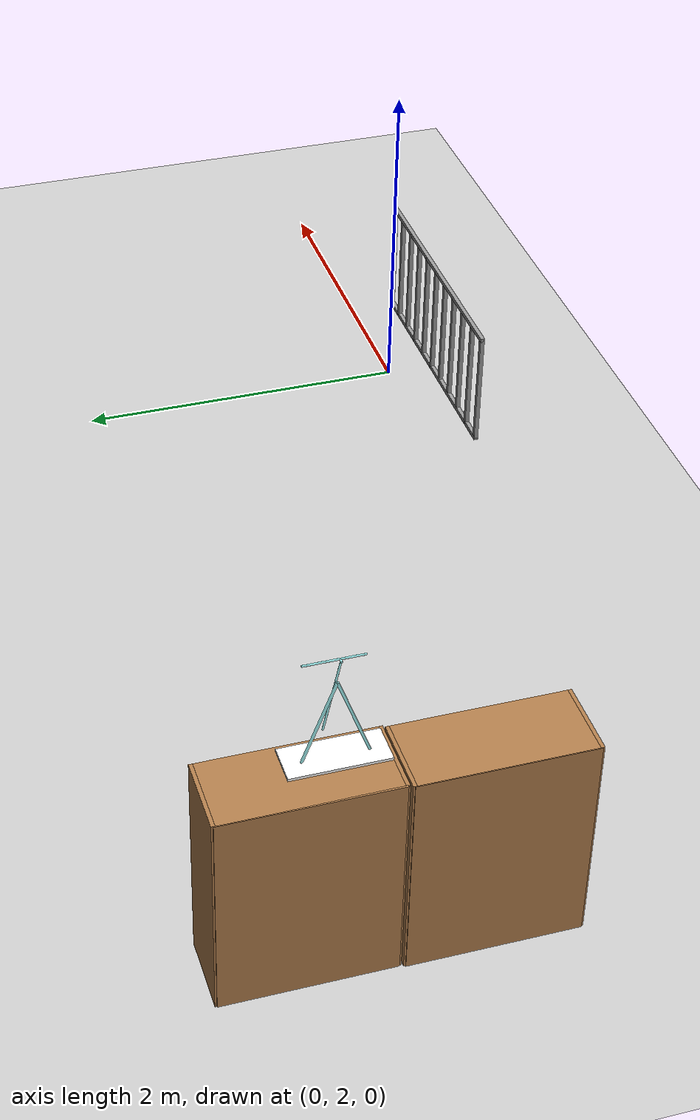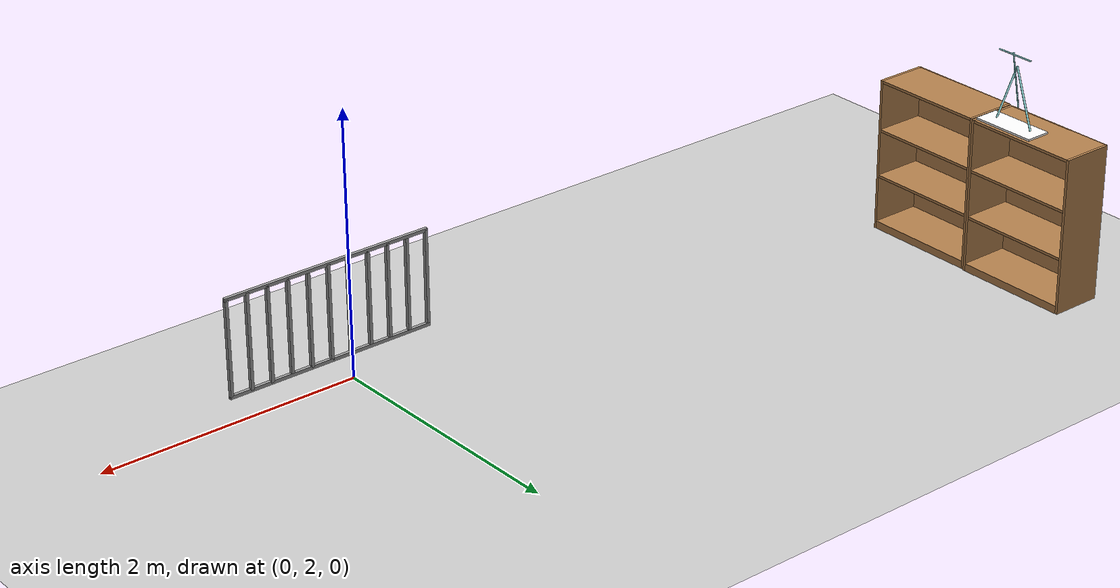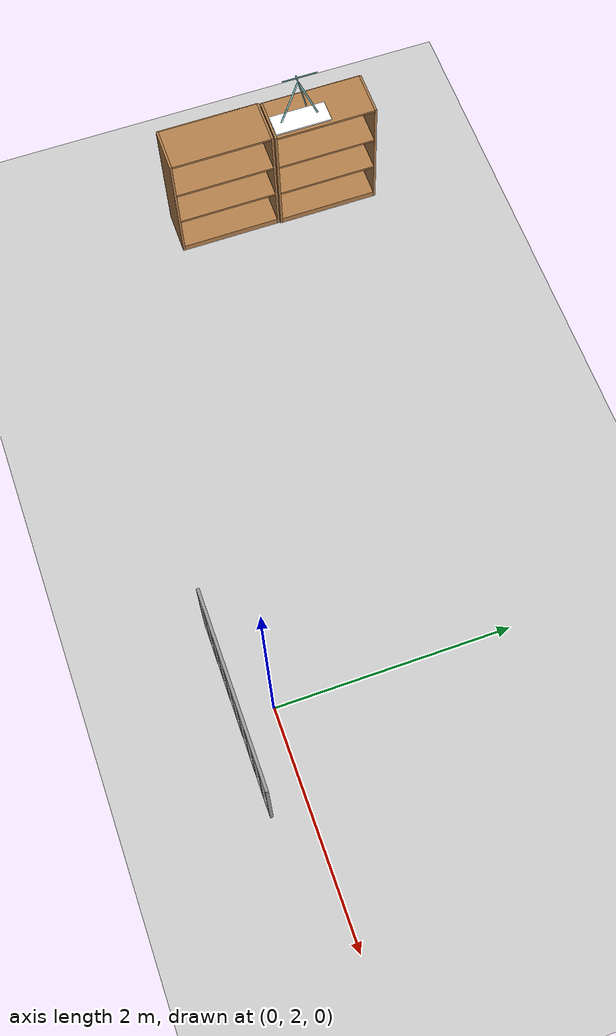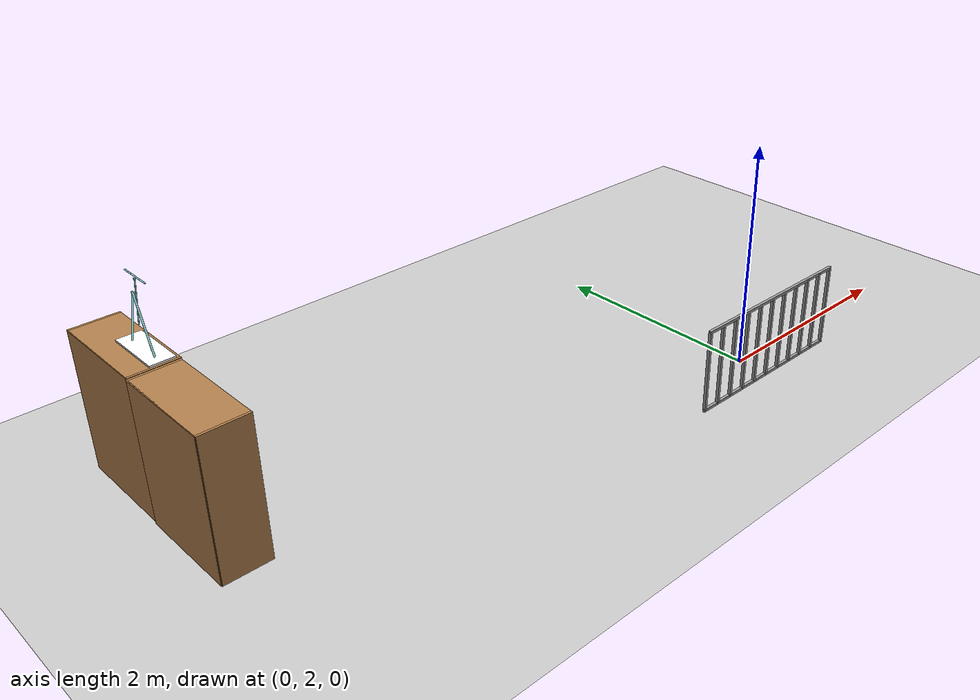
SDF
<sdf version="1.7">
 <world name="ufba_modificado">
  <model name="ground_plane">
   <static>1</static>
   <link name="link">
    <collision name="collision">
     <geometry><plane><normal>0 0 1</normal><size>100 100</size></plane></geometry>
     <surface>
      <contact><collide_bitmask>65535</collide_bitmask></contact>
      <friction><ode><mu>100</mu><mu2>50</mu2></ode></friction>
     </surface>
    </collision>
    <visual name="visual">
     <cast_shadows>0</cast_shadows>
     <geometry><plane><normal>0 0 1</normal><size>100 100</size></plane></geometry>
     <material>
      <script><uri>file://media/materials/scripts/gazebo.material</uri><name>Gazebo/Grey</name></script>
     </material>
    </visual>
   </link>
  </model>
  <model name="prateleira_1">
   <static>1</static>
   <link name="link">
    <inertial><mass>1</mass></inertial>
    <collision name="back">
     <pose>0 0.005 0.6 0 -0 0</pose>
     <geometry><box><size>0.9 0.01 1.2</size></box></geometry>
    </collision>
    <visual name="visual1">
     <pose>0 0.005 0.6 0 -0 0</pose>
     <geometry><box><size>0.9 0.01 1.2</size></box></geometry>
     <material>
      <script><uri>file://media/materials/scripts/gazebo.material</uri><name>Gazebo/Wood</name></script>
     </material>
    </visual>
    <collision name="left_side">
     <pose>0.45 -0.195 0.6 0 -0 0</pose>
     <geometry><box><size>0.02 0.4 1.2</size></box></geometry>
    </collision>
    <visual name="visual2">
     <pose>0.45 -0.195 0.6 0 -0 0</pose>
     <geometry><box><size>0.02 0.4 1.2</size></box></geometry>
     <material>
      <script><uri>file://media/materials/scripts/gazebo.material</uri><name>Gazebo/Wood</name></script>
     </material>
    </visual>
    <collision name="right_side">
     <pose>-0.45 -0.195 0.6 0 -0 0</pose>
     <geometry><box><size>0.02 0.4 1.2</size></box></geometry>
    </collision>
    <visual name="visual3">
     <pose>-0.45 -0.195 0.6 0 -0 0</pose>
     <geometry><box><size>0.02 0.4 1.2</size></box></geometry>
     <material>
      <script><uri>file://media/materials/scripts/gazebo.material</uri><name>Gazebo/Wood</name></script>
     </material>
    </visual>
    <collision name="bottom">
     <pose>0 -0.195 0.03 0 -0 0</pose>
     <geometry><box><size>0.88 0.4 0.06</size></box></geometry>
    </collision>
    <visual name="visual4">
     <pose>0 -0.195 0.03 0 -0 0</pose>
     <geometry><box><size>0.88 0.4 0.06</size></box></geometry>
     <material>
      <script><uri>file://media/materials/scripts/gazebo.material</uri><name>Gazebo/Wood</name></script>
     </material>
    </visual>
    <collision name="top">
     <pose>0 -0.195 1.19 0 -0 0</pose>
     <geometry><box><size>0.88 0.4 0.02</size></box></geometry>
    </collision>
    <visual name="visual5">
     <pose>0 -0.195 1.19 0 -0 0</pose>
     <geometry><box><size>0.88 0.4 0.02</size></box></geometry>
     <material>
      <script><uri>file://media/materials/scripts/gazebo.material</uri><name>Gazebo/Wood</name></script>
     </material>
    </visual>
    <collision name="low_shelf">
     <pose>0 -0.195 0.43 0 -0 0</pose>
     <geometry><box><size>0.88 0.4 0.02</size></box></geometry>
    </collision>
    <visual name="visual6">
     <pose>0 -0.195 0.43 0 -0 0</pose>
     <geometry><box><size>0.88 0.4 0.02</size></box></geometry>
     <material>
      <script><uri>file://media/materials/scripts/gazebo.material</uri><name>Gazebo/Wood</name></script>
     </material>
    </visual>
    <collision name="high_shelf">
     <pose>0 -0.195 0.8 0 -0 0</pose>
     <geometry><box><size>0.88 0.4 0.02</size></box></geometry>
    </collision>
    <visual name="visual7">
     <pose>0 -0.195 0.8 0 -0 0</pose>
     <geometry><box><size>0.88 0.4 0.02</size></box></geometry>
     <material>
      <script><uri>file://media/materials/scripts/gazebo.material</uri><name>Gazebo/Wood</name></script>
     </material>
    </visual>
   </link>
   <pose>-4.77065 3.0608 0 0 -0 1.5707</pose>
  </model>
  <model name="prateleira_1_clone">
   <static>1</static>
   <link name="link">
    <inertial><mass>1</mass></inertial>
    <collision name="back">
     <pose>0 0.005 0.6 0 -0 0</pose>
     <geometry><box><size>0.9 0.01 1.2</size></box></geometry>
    </collision>
    <visual name="visual1">
     <pose>0 0.005 0.6 0 -0 0</pose>
     <geometry><box><size>0.9 0.01 1.2</size></box></geometry>
     <material>
      <script><uri>file://media/materials/scripts/gazebo.material</uri><name>Gazebo/Wood</name></script>
     </material>
    </visual>
    <collision name="left_side">
     <pose>0.45 -0.195 0.6 0 -0 0</pose>
     <geometry><box><size>0.02 0.4 1.2</size></box></geometry>
    </collision>
    <visual name="visual2">
     <pose>0.45 -0.195 0.6 0 -0 0</pose>
     <geometry><box><size>0.02 0.4 1.2</size></box></geometry>
     <material>
      <script><uri>file://media/materials/scripts/gazebo.material</uri><name>Gazebo/Wood</name></script>
     </material>
    </visual>
    <collision name="right_side">
     <pose>-0.45 -0.195 0.6 0 -0 0</pose>
     <geometry><box><size>0.02 0.4 1.2</size></box></geometry>
    </collision>
    <visual name="visual3">
     <pose>-0.45 -0.195 0.6 0 -0 0</pose>
     <geometry><box><size>0.02 0.4 1.2</size></box></geometry>
     <material>
      <script><uri>file://media/materials/scripts/gazebo.material</uri><name>Gazebo/Wood</name></script>
     </material>
    </visual>
    <collision name="bottom">
     <pose>0 -0.195 0.03 0 -0 0</pose>
     <geometry><box><size>0.88 0.4 0.06</size></box></geometry>
    </collision>
    <visual name="visual4">
     <pose>0 -0.195 0.03 0 -0 0</pose>
     <geometry><box><size>0.88 0.4 0.06</size></box></geometry>
     <material>
      <script><uri>file://media/materials/scripts/gazebo.material</uri><name>Gazebo/Wood</name></script>
     </material>
    </visual>
    <collision name="top">
     <pose>0 -0.195 1.19 0 -0 0</pose>
     <geometry><box><size>0.88 0.4 0.02</size></box></geometry>
    </collision>
    <visual name="visual5">
     <pose>0 -0.195 1.19 0 -0 0</pose>
     <geometry><box><size>0.88 0.4 0.02</size></box></geometry>
     <material>
      <script><uri>file://media/materials/scripts/gazebo.material</uri><name>Gazebo/Wood</name></script>
     </material>
    </visual>
    <collision name="low_shelf">
     <pose>0 -0.195 0.43 0 -0 0</pose>
     <geometry><box><size>0.88 0.4 0.02</size></box></geometry>
    </collision>
    <visual name="visual6">
     <pose>0 -0.195 0.43 0 -0 0</pose>
     <geometry><box><size>0.88 0.4 0.02</size></box></geometry>
     <material>
      <script><uri>file://media/materials/scripts/gazebo.material</uri><name>Gazebo/Wood</name></script>
     </material>
    </visual>
    <collision name="high_shelf">
     <pose>0 -0.195 0.8 0 -0 0</pose>
     <geometry><box><size>0.88 0.4 0.02</size></box></geometry>
    </collision>
    <visual name="visual7">
     <pose>0 -0.195 0.8 0 -0 0</pose>
     <geometry><box><size>0.88 0.4 0.02</size></box></geometry>
     <material>
      <script><uri>file://media/materials/scripts/gazebo.material</uri><name>Gazebo/Wood</name></script>
     </material>
    </visual>
   </link>
   <pose>-4.76009 3.98886 0 0 -0 1.5707</pose>
  </model>
  <model name="pendulum">
   <link name="base">
    <inertial>
     <inertia><ixx>1</ixx><ixy>0</ixy><ixz>0</ixz><iyy>1</iyy><iyz>0</iyz><izz>1</izz></inertia>
     <mass>1</mass>
    </inertial>
    <visual name="vis_plate_on_ground">
     <pose>-0 0.001 0.0005 0 -0 0</pose>
     <geometry><box><size>0.2 0.5 0.015</size></box></geometry>
     <material>
      <ambient>1 1 1 1</ambient>
      <diffuse>1 1 1 1</diffuse>
      <specular>1 1 1 1</specular>
      <pbr>
       <metal>
        <albedo_map>materials/Wood/Wood_COLOR.jpg</albedo_map>
        <normal_map>materials/Wood/Wood_NORM.jpg</normal_map>
        <roughness_map>materials/Wood/Wood_ROUGH.jpg</roughness_map>
       </metal>
      </pbr>
     </material>
    </visual>
    <visual name="vis_pole">
     <pose>-0.01375 0.0819 0.225 0.349 -0 0</pose>
     <geometry><cylinder><length>0.4788</length><radius>0.007</radius></cylinder></geometry>
     <material>
      <ambient>0.66 1 1 1</ambient>
      <diffuse>0.66 1 1 1</diffuse>
      <specular>0.66 1 1 1</specular>
      <pbr><metal><metalness>0.9</metalness></metal></pbr>
     </material>
    </visual>
    <visual name="vis_pole2">
     <pose>-0.01375 -0.0819 0.225 -0.349 0 0</pose>
     <geometry><cylinder><length>0.4788</length><radius>0.007</radius></cylinder></geometry>
     <material>
      <ambient>0.66 1 1 1</ambient>
      <diffuse>0.66 1 1 1</diffuse>
      <specular>0.66 1 1 1</specular>
      <pbr><metal><metalness>0.9</metalness></metal></pbr>
     </material>
    </visual>
    <collision name="col_plate_on_ground">
     <pose>-0 0.001 0.0005 0 -0 0</pose>
     <geometry><box><size>0.2 0.5 0.015</size></box></geometry>
     <density>2710.0</density>
    </collision>
    <collision name="col_pole">
     <pose>-0.01375 0.0819 0.225 0.349 -0 0</pose>
     <geometry><cylinder><length>0.4788</length><radius>0.007</radius></cylinder></geometry>
     <density>2710</density>
    </collision>
    <collision name="col_pole2">
     <pose>-0.01375 -0.0819 0.225 -0.349 0 0</pose>
     <geometry><cylinder><length>0.4788</length><radius>0.007</radius></cylinder></geometry>
     <density>2710</density>
    </collision>
   </link>
   <link name="upper_link">
    <pose>0 0.017 0.355 0.2 -0 0</pose>
    <inertial>
     <inertia><ixx>1</ixx><ixy>0</ixy><ixz>0</ixz><iyy>1</iyy><iyz>0</iyz><izz>1</izz></inertia>
     <mass>1</mass>
    </inertial>
    <visual name="vis_upper_joint">
     <pose>-0.0025 0 0.0875 3.14159 1.57079 3.14159</pose>
     <geometry><cylinder><radius>0.005</radius><length>0.015</length></cylinder></geometry>
     <material>
      <ambient>0.66 1 1 1</ambient>
      <diffuse>0.66 1 1 1</diffuse>
      <specular>0.66 1 1 1</specular>
      <pbr><metal><metalness>0.9</metalness></metal></pbr>
     </material>
    </visual>
    <visual name="vis_bob2">
     <pose>0.01 0 0.2 3.14159 1.57079 3.14159</pose>
     <geometry><cylinder><radius>0.005</radius><length>0.02</length></cylinder></geometry>
     <material>
      <ambient>0.66 1 1 1</ambient>
      <diffuse>0.66 1 1 1</diffuse>
      <specular>0.66 1 1 1</specular>
      <pbr><metal><metalness>0.9</metalness></metal></pbr>
     </material>
    </visual>
    <visual name="vis_cylinder">
     <pose>0.01 0 0 0 -0 0</pose>
     <geometry><cylinder><radius>0.005</radius><length>0.395</length></cylinder></geometry>
     <material>
      <ambient>0.66 1 1 1</ambient>
      <diffuse>0.66 1 1 1</diffuse>
      <specular>0.66 1 1 1</specular>
      <pbr><metal><metalness>0.9</metalness></metal></pbr>
     </material>
    </visual>
    <collision name="col_upper_joint">
     <pose>-0.0025 0 0.0875 3.14159 1.57079 3.14159</pose>
     <geometry><cylinder><radius>0.01</radius><length>0.015</length></cylinder></geometry>
     <density>2710</density>
    </collision>
    <collision name="col_bob2">
     <pose>0.01 0 0.207 3.14159 1.57079 3.14159</pose>
     <geometry><cylinder><radius>0.01</radius><length>0.02</length></cylinder></geometry>
     <density>2710</density>
    </collision>
    <collision name="col_cylinder">
     <pose>0.01 0 0 0 -0 0</pose>
     <geometry><cylinder><radius>0.005</radius><length>0.395</length></cylinder></geometry>
     <density>2710</density>
    </collision>
   </link>
   <link name="lower_link">
    <pose>0.025 -0.02 0.55 -1.57 0 0</pose>
    <inertial>
     <inertia><ixx>1</ixx><ixy>0</ixy><ixz>0</ixz><iyy>1</iyy><iyz>0</iyz><izz>1</izz></inertia>
     <mass>1</mass>
    </inertial>
    <visual name="vis_cylinder">
     <pose>0 0 0.025 0 -0 0</pose>
     <geometry><cylinder><radius>0.005</radius><length>0.3</length></cylinder></geometry>
     <material>
      <ambient>0.66 1 1 1</ambient>
      <diffuse>0.66 1 1 1</diffuse>
      <specular>0.66 1 1 1</specular>
      <pbr><metal><metalness>0.9</metalness></metal></pbr>
     </material>
    </visual>
    <collision name="col_cylinder">
     <pose>0 0 0.025 0 -0 0</pose>
     <geometry><cylinder><radius>0.005</radius><length>0.3</length></cylinder></geometry>
     <density>2710</density>
    </collision>
   </link>
   <joint name="upper_joint" type="revolute">
    <pose>-0.0025 0 0.0875 0 -0 0</pose>
    <parent>base</parent>
    <child>upper_link</child>
    <axis>
     <xyz>1 0 0</xyz>
     <limit><lower>-1e+16</lower><upper>1e+16</upper></limit>
     <dynamics><spring_reference>0</spring_reference><spring_stiffness>0</spring_stiffness></dynamics>
    </axis>
   </joint>
   <joint name="lower_joint" type="revolute">
    <pose relative_to="upper_link">0.01 0 0.2 0 -0 0</pose>
    <parent>upper_link</parent>
    <child>lower_link</child>
    <axis>
     <xyz>1 0 0</xyz>
     <limit><lower>-1e+16</lower><upper>1e+16</upper></limit>
     <dynamics><spring_reference>0</spring_reference><spring_stiffness>0</spring_stiffness></dynamics>
    </axis>
   </joint>
   <pose>-4.49231 3.79783 1.207 -5e-06 1e-06 -9.7e-05</pose>
  </model>
  <model name="pet_gate_wide_clone_0">
   <static>1</static>
   <link name="link">
    <collision name="bar1_collision">
     <pose>0 0 0.381 0 -0 0</pose>
     <geometry><box><size>0.0254 0.0254 0.7366</size></box></geometry>
    </collision>
    <visual name="bar1_visual">
     <pose>0 0 0.381 0 -0 0</pose>
     <geometry><box><size>0.0254 0.0254 0.7366</size></box></geometry>
     <material>
      <script><uri>file://media/materials/scripts/gazebo.material</uri><name>Gazebo/Grey</name></script>
     </material>
    </visual>
    <collision name="bar2_collision">
     <pose>0.1651 0 0.381 0 -0 0</pose>
     <geometry><box><size>0.0254 0.0254 0.7366</size></box></geometry>
    </collision>
    <visual name="bar2_visual">
     <pose>0.1651 0 0.381 0 -0 0</pose>
     <geometry><box><size>0.0254 0.0254 0.7366</size></box></geometry>
     <material>
      <script><uri>file://media/materials/scripts/gazebo.material</uri><name>Gazebo/Grey</name></script>
     </material>
    </visual>
    <collision name="bar3_collision">
     <pose>0.3302 0 0.381 0 -0 0</pose>
     <geometry><box><size>0.0254 0.0254 0.7366</size></box></geometry>
    </collision>
    <visual name="bar3_visual">
     <pose>0.3302 0 0.381 0 -0 0</pose>
     <geometry><box><size>0.0254 0.0254 0.7366</size></box></geometry>
     <material>
      <script><uri>file://media/materials/scripts/gazebo.material</uri><name>Gazebo/Grey</name></script>
     </material>
    </visual>
    <collision name="bar4_collision">
     <pose>0.4953 0 0.381 0 -0 0</pose>
     <geometry><box><size>0.0254 0.0254 0.7366</size></box></geometry>
    </collision>
    <visual name="bar4_visual">
     <pose>0.4953 0 0.381 0 -0 0</pose>
     <geometry><box><size>0.0254 0.0254 0.7366</size></box></geometry>
     <material>
      <script><uri>file://media/materials/scripts/gazebo.material</uri><name>Gazebo/Grey</name></script>
     </material>
    </visual>
    <collision name="bar5_collision">
     <pose>0.6604 0 0.381 0 -0 0</pose>
     <geometry><box><size>0.0254 0.0254 0.7366</size></box></geometry>
    </collision>
    <visual name="bar5_visual">
     <pose>0.6604 0 0.381 0 -0 0</pose>
     <geometry><box><size>0.0254 0.0254 0.7366</size></box></geometry>
     <material>
      <script><uri>file://media/materials/scripts/gazebo.material</uri><name>Gazebo/Grey</name></script>
     </material>
    </visual>
    <collision name="bar6_collision">
     <pose>0.8255 0 0.381 0 -0 0</pose>
     <geometry><box><size>0.0254 0.0254 0.7366</size></box></geometry>
    </collision>
    <visual name="bar6_visual">
     <pose>0.8255 0 0.381 0 -0 0</pose>
     <geometry><box><size>0.0254 0.0254 0.7366</size></box></geometry>
     <material>
      <script><uri>file://media/materials/scripts/gazebo.material</uri><name>Gazebo/Grey</name></script>
     </material>
    </visual>
    <collision name="bar7_collision">
     <pose>0.9906 0 0.381 0 -0 0</pose>
     <geometry><box><size>0.0254 0.0254 0.7366</size></box></geometry>
    </collision>
    <visual name="bar7_visual">
     <pose>0.9906 0 0.381 0 -0 0</pose>
     <geometry><box><size>0.0254 0.0254 0.7366</size></box></geometry>
     <material>
      <script><uri>file://media/materials/scripts/gazebo.material</uri><name>Gazebo/Grey</name></script>
     </material>
    </visual>
    <collision name="bar8_collision">
     <pose>1.1557 0 0.381 0 -0 0</pose>
     <geometry><box><size>0.0254 0.0254 0.7366</size></box></geometry>
    </collision>
    <visual name="bar8_visual">
     <pose>1.1557 0 0.381 0 -0 0</pose>
     <geometry><box><size>0.0254 0.0254 0.7366</size></box></geometry>
     <material>
      <script><uri>file://media/materials/scripts/gazebo.material</uri><name>Gazebo/Grey</name></script>
     </material>
    </visual>
    <collision name="bar9_collision">
     <pose>1.3208 0 0.381 0 -0 0</pose>
     <geometry><box><size>0.0254 0.0254 0.7366</size></box></geometry>
    </collision>
    <visual name="bar9_visual">
     <pose>1.3208 0 0.381 0 -0 0</pose>
     <geometry><box><size>0.0254 0.0254 0.7366</size></box></geometry>
     <material>
      <script><uri>file://media/materials/scripts/gazebo.material</uri><name>Gazebo/Grey</name></script>
     </material>
    </visual>
    <collision name="bar10_collision">
     <pose>1.4859 0 0.381 0 -0 0</pose>
     <geometry><box><size>0.0254 0.0254 0.7366</size></box></geometry>
    </collision>
    <visual name="bar10_visual">
     <pose>1.4859 0 0.381 0 -0 0</pose>
     <geometry><box><size>0.0254 0.0254 0.7366</size></box></geometry>
     <material>
      <script><uri>file://media/materials/scripts/gazebo.material</uri><name>Gazebo/Grey</name></script>
     </material>
    </visual>
    <collision name="bar11_collision">
     <pose>1.651 0 0.381 0 -0 0</pose>
     <geometry><box><size>0.0254 0.0254 0.7366</size></box></geometry>
    </collision>
    <visual name="bar11_visual">
     <pose>1.651 0 0.381 0 -0 0</pose>
     <geometry><box><size>0.0254 0.0254 0.7366</size></box></geometry>
     <material>
      <script><uri>file://media/materials/scripts/gazebo.material</uri><name>Gazebo/Grey</name></script>
     </material>
    </visual>
    <collision name="top_rail_collision">
     <pose>0.8255 0 0.7493 0 -0 0</pose>
     <geometry><box><size>1.6764 0.0254 0.0254</size></box></geometry>
    </collision>
    <visual name="top_rail_visual">
     <pose>0.8255 0 0.7493 0 -0 0</pose>
     <geometry><box><size>1.6764 0.0254 0.0254</size></box></geometry>
     <material>
      <script><uri>file://media/materials/scripts/gazebo.material</uri><name>Gazebo/Grey</name></script>
     </material>
    </visual>
    <collision name="bottom_rail_collision">
     <pose>0.8255 0 0.0127 0 -0 0</pose>
     <geometry><box><size>1.6764 0.0254 0.0254</size></box></geometry>
    </collision>
    <visual name="bottom_rail_visual">
     <pose>0.8255 0 0.0127 0 -0 0</pose>
     <geometry><box><size>1.6764 0.0254 0.0254</size></box></geometry>
     <material>
      <script><uri>file://media/materials/scripts/gazebo.material</uri><name>Gazebo/Grey</name></script>
     </material>
    </visual>
   </link>
   <pose>-0.847873 1.70845 0 0 -0 0</pose>
  </model>
 </world>
</sdf>
